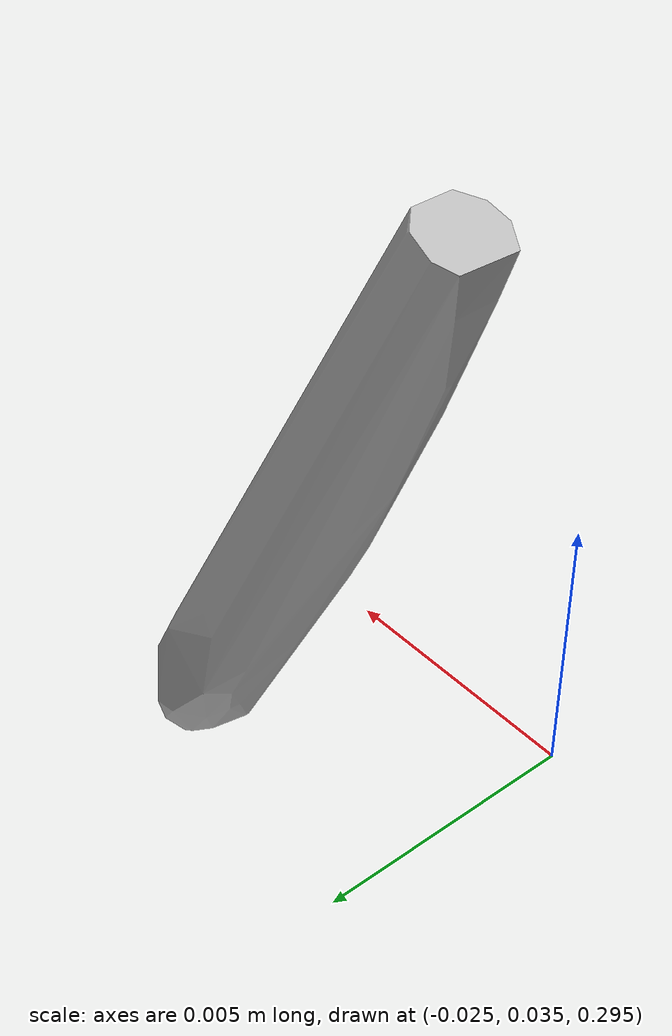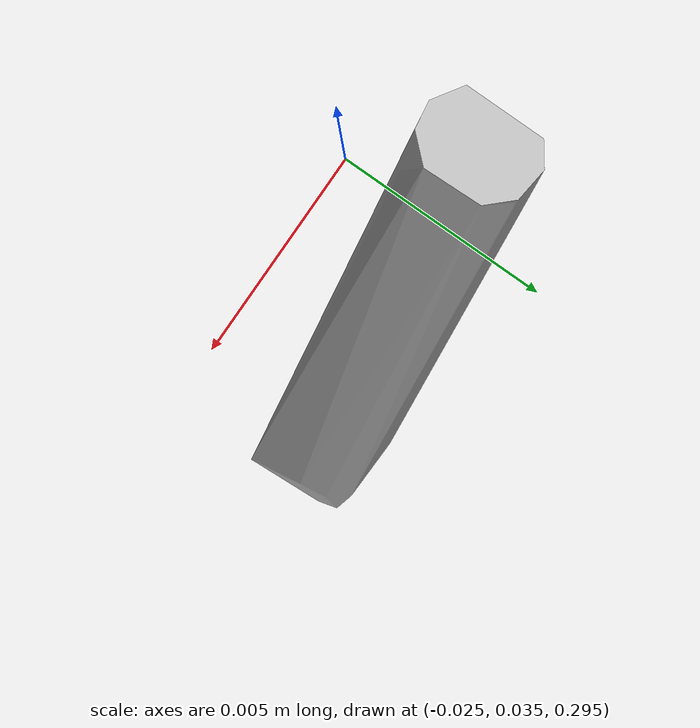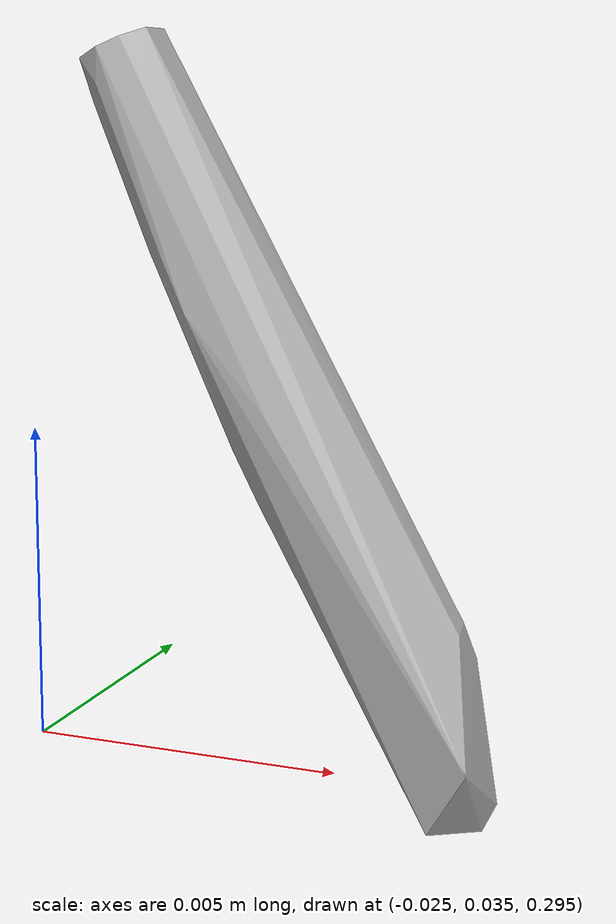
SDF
<?xml version="1.0"?>
<sdf version="1.7">
  <model name="vascular_partexport008">
    <link name="vascular_partexport008_body">
      <visual name="vascular_partexport008_visual">
        <geometry>
          <mesh>
            <uri>vascular_partexport008.obj</uri>
          </mesh>
        </geometry>
      </visual>
      <collision name="vascular_partexport008_collision">
        <geometry>
          <mesh>
            <uri>vascular_partexport008.obj</uri>
          </mesh>
        </geometry>
      </collision>
    </link>
    <frame name="vascular_partexport008_center">
      <pose relative_to="vascular_partexport008_body">0 0 0 0 0 0</pose>
    </frame>
  </model>
</sdf>
